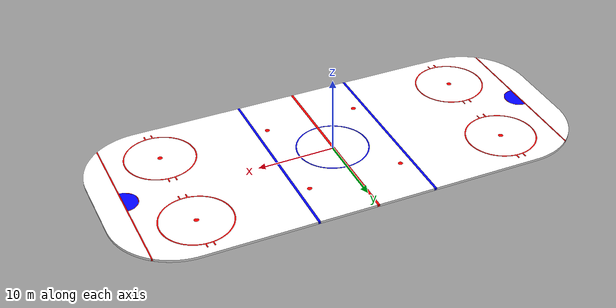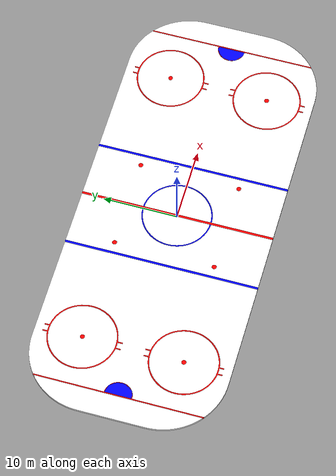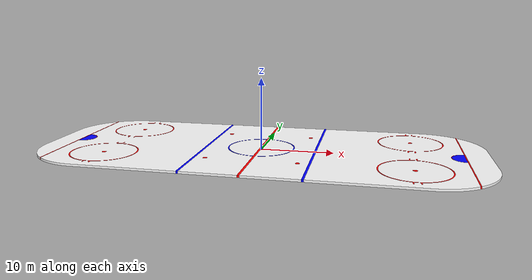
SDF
<?xml version="1.0" ?>
<sdf version="1.5">
  <model name="Ice Rink">
      <link name="ice_link">
        <inertial>
          <inertia>
            <izz>2.825</izz>
            <iyz>0.0</iyz>
            <iyy>3.6250000000000004</iyy>
            <ixx>3.25</ixx>
            <ixy>0.0</ixy>
            <ixz>0.0</ixz>
            <gravity>1</gravity>
          </inertia>
          <mass>30000.0</mass>
          <pose>0 0 0 0 0 0</pose>
        </inertial>

        <collision name="collision">
          <static>true</static>
          <pose>0 0 0 0 0 0</pose>
          <geometry>
            <mesh>
              <scale>0.001 0.001 0.001</scale>
              <uri>model://ice_rink/meshes/Ice.stl</uri>
            </mesh>
          </geometry>
          <surface>
            <friction>
              <ode>
                <mu>100</mu>
                <mu2>50</mu2>
              </ode>
            </friction>
          </surface>
        </collision>

        <visual name="visual">
          <pose>0 0 0 0 0 0</pose>
          <material>
            <ambient>1 1 1 1</ambient>
            <diffuse>1 1 1 1</diffuse>
            <specular>0.1 0.1 0.1 1</specular>
            <emissive>0 0 0 0</emissive>
          </material>
        <geometry>
            <mesh>
              <scale>0.001 0.001 0.001</scale>
              <uri>model://ice_rink/meshes/Ice.stl</uri>
            </mesh>
          </geometry>
        </visual>

        <self_collide>1</self_collide>
      </link>

      <link name="red_line_link">
        <inertial>
          <inertia>
            <izz>2.825</izz>
            <iyz>0.0</iyz>
            <iyy>3.6250000000000004</iyy>
            <ixx>3.25</ixx>
            <ixy>0.0</ixy>
            <ixz>0.0</ixz>
            <gravity>1</gravity>
          </inertia>
          <mass>30000.0</mass>
          <pose>0 0 0 0 0 0</pose>
        </inertial>

        <collision name="collision">
          <static>true</static>
          <pose>0 0 0 0 0 0</pose>
          <geometry>
            <mesh>
              <scale>0.001 0.001 0.001</scale>
              <uri>model://ice_rink/meshes/Red_Line.stl</uri>
            </mesh>
          </geometry>
          <surface>
            <friction>
              <ode>
                <mu>100</mu>
                <mu2>50</mu2>
              </ode>
            </friction>
          </surface>
        </collision>

        <visual name="visual">
          <pose>0 0 0 0 0 0</pose>
          <material>
            <ambient>1 0 0 1</ambient>
            <diffuse>1 0 0 1</diffuse>
            <specular>0.1 0.1 0.1 1</specular>
            <emissive>0 0 0 0</emissive>
          </material>
        <geometry>
            <mesh>
              <scale>0.001 0.001 0.001</scale>
              <uri>model://ice_rink/meshes/Red_Line.stl</uri>
            </mesh>
          </geometry>
        </visual>

        <self_collide>1</self_collide>
      </link>

      <link name="blue_line_link">
        <inertial>
          <inertia>
            <izz>2.825</izz>
            <iyz>0.0</iyz>
            <iyy>3.6250000000000004</iyy>
            <ixx>3.25</ixx>
            <ixy>0.0</ixy>
            <ixz>0.0</ixz>
            <gravity>1</gravity>
          </inertia>
          <mass>30000.0</mass>
          <pose>0 0 0 0 0 0</pose>
        </inertial>

        <collision name="collision">
          <static>true</static>
          <pose>0 0 0 0 0 0</pose>
          <geometry>
            <mesh>
              <scale>0.001 0.001 0.001</scale>
              <uri>model://ice_rink/meshes/Blue_Line.stl</uri>
            </mesh>
          </geometry>
          <surface>
            <friction>
              <ode>
                <mu>100</mu>
                <mu2>50</mu2>
              </ode>
            </friction>
          </surface>
        </collision>

        <visual name="visual">
          <pose>0 0 0 0 0 0</pose>
          <material>
            <ambient>0 0 1 1</ambient>
            <diffuse>0 0 1 1</diffuse>
            <specular>0.1 0.1 0.1 1</specular>
            <emissive>0 0 0 0</emissive>
          </material>
          <geometry>
            <mesh>
              <scale>0.001 0.001 0.001</scale>
              <uri>model://ice_rink/meshes/Blue_Line.stl</uri>
            </mesh>
          </geometry>
        </visual>

        <self_collide>1</self_collide>
      </link>

      <self_collide>0</self_collide>
      <enable_wind>0</enable_wind>
      <kinematic>0</kinematic>
      <static>true</static>
    </model>
</sdf>
